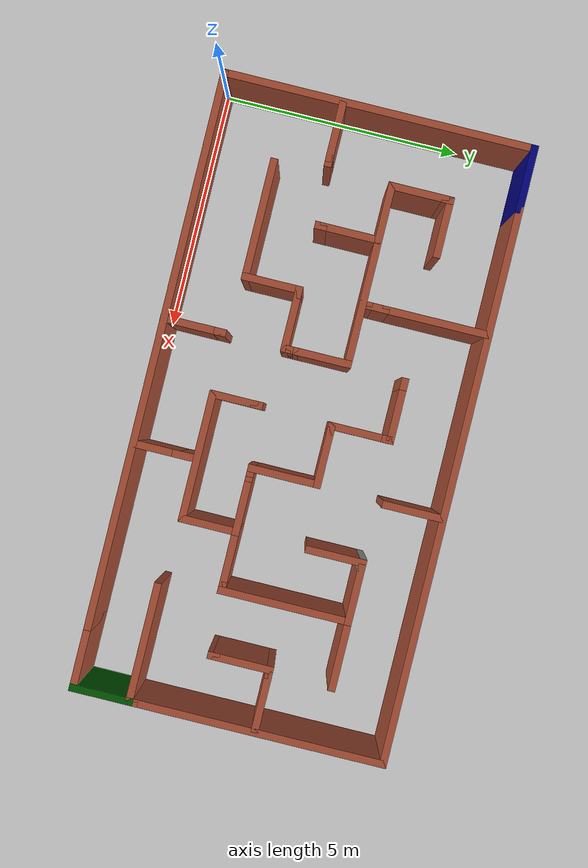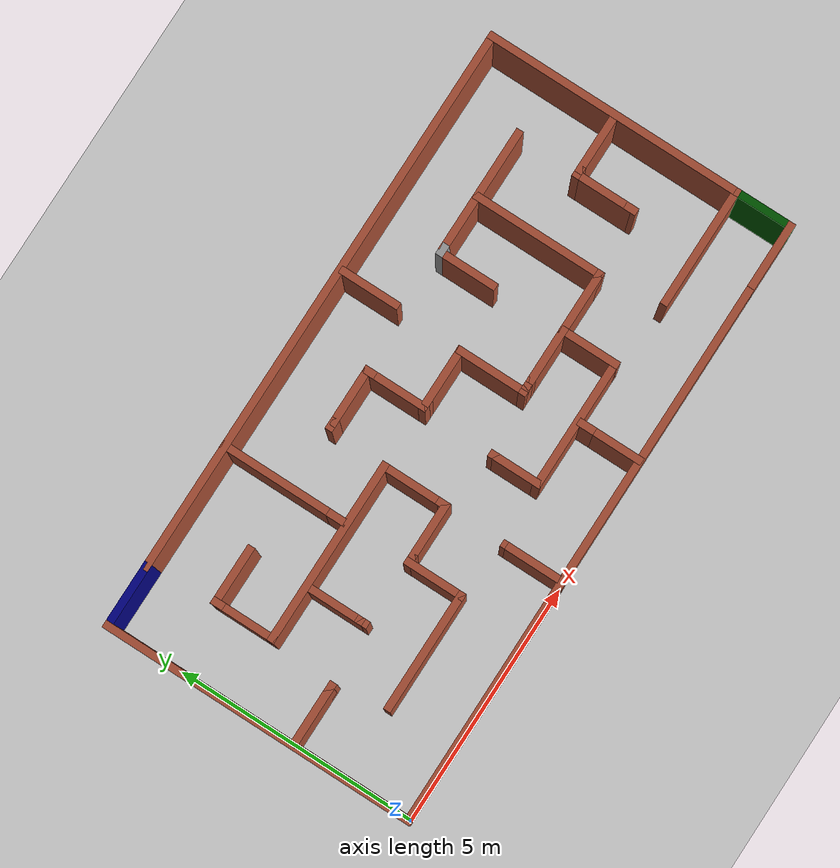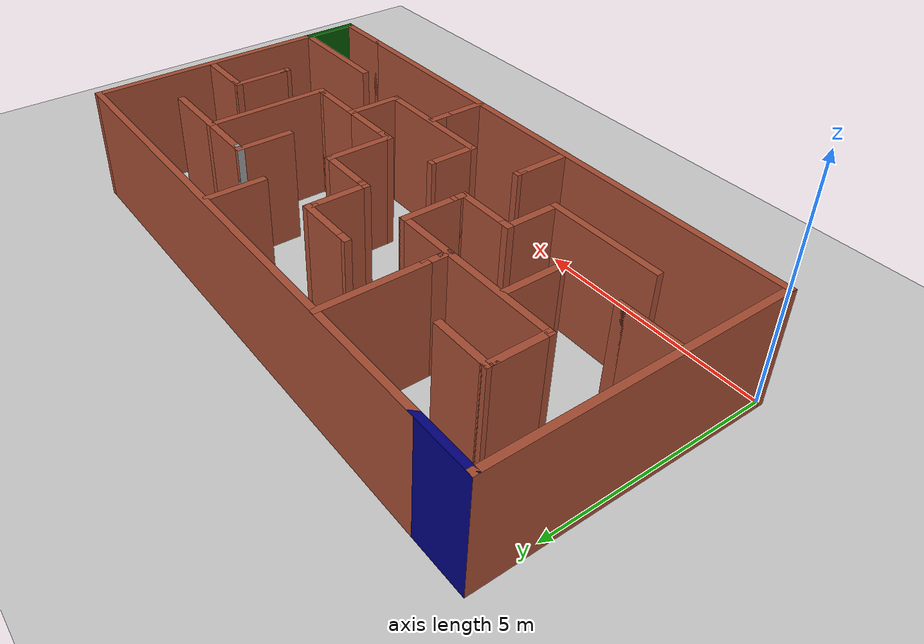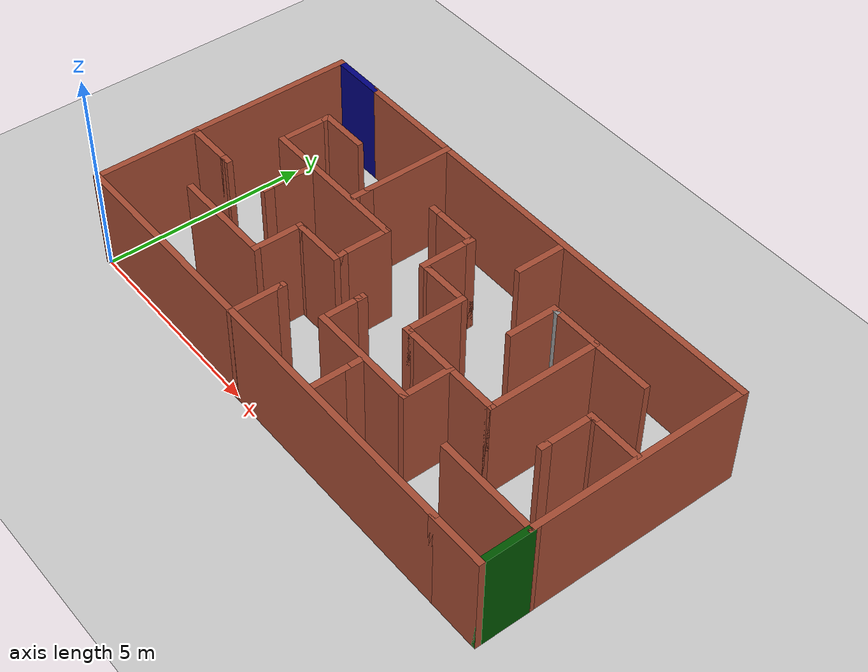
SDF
<sdf version="1.6">
 <world name="default">
  <light name="sun" type="directional">
   <pose>0 0 10 0 -0 0</pose>
   <diffuse>0.8 0.8 0.8 1</diffuse>
   <specular>0.1 0.1 0.1 1</specular>
   <attenuation>
    <range>1000</range>
    <constant>0.9</constant>
    <linear>0.01</linear>
    <quadratic>0.001</quadratic>
   </attenuation>
   <direction>-0.5 0.5 -1</direction>
  </light>
  <model name="ground_plane">
   <static>1</static>
   <link name="link">
    <collision name="collision">
     <geometry><plane><normal>0 0 1</normal><size>100 100</size></plane></geometry>
     <surface><friction><ode><mu>100</mu><mu2>50</mu2></ode></friction></surface>
    </collision>
    <visual name="visual">
     <cast_shadows>0</cast_shadows>
     <geometry><plane><normal>0 0 1</normal><size>100 100</size></plane></geometry>
     <material>
      <script><uri>file://media/materials/scripts/gazebo.material</uri><name>Gazebo/Grey</name></script>
     </material>
    </visual>
   </link>
  </model>
  <gravity>0 0 -9.8</gravity>
  <magnetic_field>6e-06 2.3e-05 -4.2e-05</magnetic_field>
  <atmosphere type="adiabatic"/>
  <physics name="default_physics" default="0" type="ode">
   <max_step_size>0.001</max_step_size>
   <real_time_factor>1</real_time_factor>
   <real_time_update_rate>1000</real_time_update_rate>
  </physics>
  <scene><ambient>0.4 0.4 0.4 1</ambient><background>0.7 0.7 0.7 1</background><shadows>1</shadows></scene>
  <spherical_coordinates>
   <surface_model>EARTH_WGS84</surface_model>
   <latitude_deg>0</latitude_deg>
   <longitude_deg>0</longitude_deg>
   <elevation>0</elevation>
   <heading_deg>0</heading_deg>
  </spherical_coordinates>
  <model name="maze_simple">
   <pose>6.28183 3.20033 0 0 -0 0</pose>
   <link name="Wall_100">
    <collision name="Wall_100_Collision">
     <geometry><box><size>0.25 0.15 2.5</size></box></geometry>
     <pose>0 0 1.25 0 -0 0</pose>
    </collision>
    <visual name="Wall_100_Visual">
     <pose>0 0 1.25 0 -0 0</pose>
     <geometry><box><size>0.25 0.15 2.5</size></box></geometry>
     <material>
      <script><uri>file://media/materials/scripts/gazebo.material</uri><name>Gazebo/Bricks</name></script>
      <ambient>1 1 1 1</ambient>
     </material>
    </visual>
    <pose>-1.13318 1.78039 0 0 -0 3.14159</pose>
   </link>
   <link name="Wall_102">
    <collision name="Wall_102_Collision">
     <geometry><box><size>1.25 0.15 2.5</size></box></geometry>
     <pose>0 0 1.25 0 -0 0</pose>
    </collision>
    <visual name="Wall_102_Visual">
     <pose>0 0 1.25 0 -0 0</pose>
     <geometry><box><size>1.25 0.15 2.5</size></box></geometry>
     <material>
      <script><uri>file://media/materials/scripts/gazebo.material</uri><name>Gazebo/Bricks</name></script>
      <ambient>1 1 1 1</ambient>
     </material>
    </visual>
    <pose>3.06682 -0.769606 0 0 -0 0</pose>
   </link>
   <link name="Wall_103">
    <collision name="Wall_103_Collision">
     <geometry><box><size>0.25 0.15 2.5</size></box></geometry>
     <pose>0 0 1.25 0 -0 0</pose>
    </collision>
    <visual name="Wall_103_Visual">
     <pose>0 0 1.25 0 -0 0</pose>
     <geometry><box><size>0.25 0.15 2.5</size></box></geometry>
     <material>
      <script><uri>file://media/materials/scripts/gazebo.material</uri><name>Gazebo/Bricks</name></script>
      <ambient>1 1 1 1</ambient>
     </material>
    </visual>
    <pose>3.66682 -0.769606 0 0 -0 0</pose>
   </link>
   <link name="Wall_104">
    <collision name="Wall_104_Collision">
     <geometry><box><size>2.75 0.15 2.5</size></box></geometry>
     <pose>0 0 1.25 0 -0 0</pose>
    </collision>
    <visual name="Wall_104_Visual">
     <pose>0 0 1.25 0 -0 0</pose>
     <geometry><box><size>2.75 0.15 2.5</size></box></geometry>
     <material>
      <script><uri>file://media/materials/scripts/gazebo.material</uri><name>Gazebo/Bricks</name></script>
      <ambient>1 1 1 1</ambient>
     </material>
    </visual>
    <pose>3.71682 0.530394 0 0 -0 1.5708</pose>
   </link>
   <link name="Wall_105">
    <collision name="Wall_105_Collision">
     <geometry><box><size>1.25 0.15 2.5</size></box></geometry>
     <pose>0 0 1.25 0 -0 0</pose>
    </collision>
    <visual name="Wall_105_Visual">
     <pose>0 0 1.25 0 -0 0</pose>
     <geometry><box><size>1.25 0.15 2.5</size></box></geometry>
     <material>
      <script><uri>file://media/materials/scripts/gazebo.material</uri><name>Gazebo/Bricks</name></script>
      <ambient>1 1 1 1</ambient>
     </material>
    </visual>
    <pose>3.16682 1.83039 0 0 -0 3.14159</pose>
   </link>
   <link name="Wall_106">
    <collision name="Wall_106_Collision">
     <geometry><box><size>0.25 0.15 2.5</size></box></geometry>
     <pose>0 0 1.25 0 -0 0</pose>
    </collision>
    <visual name="Wall_106_Visual">
     <pose>0 0 1.25 0 -0 0</pose>
     <geometry><box><size>0.25 0.15 2.5</size></box></geometry>
     <material>
      <script><uri>file://media/materials/scripts/gazebo.material</uri><name>Gazebo/Grey</name></script>
      <ambient>1 1 1 1</ambient>
     </material>
    </visual>
    <pose>2.56682 1.83039 0 0 -0 3.14159</pose>
   </link>
   <link name="Wall_107">
    <collision name="Wall_107_Collision">
     <geometry><box><size>1.25 0.15 2.5</size></box></geometry>
     <pose>0 0 1.25 0 -0 0</pose>
    </collision>
    <visual name="Wall_107_Visual">
     <pose>0 0 1.25 0 -0 0</pose>
     <geometry><box><size>1.25 0.15 2.5</size></box></geometry>
     <material>
      <script><uri>file://media/materials/scripts/gazebo.material</uri><name>Gazebo/Bricks</name></script>
      <ambient>1 1 1 1</ambient>
     </material>
    </visual>
    <pose>2.51682 1.28039 0 0 0 -1.5708</pose>
   </link>
   <link name="Wall_109">
    <collision name="Wall_109_Collision">
     <geometry><box><size>1.5 0.15 2.5</size></box></geometry>
     <pose>0 0 1.25 0 -0 0</pose>
    </collision>
    <visual name="Wall_109_Visual">
     <pose>0 0 1.25 0 -0 0</pose>
     <geometry><box><size>1.5 0.15 2.5</size></box></geometry>
     <material>
      <script><uri>file://media/materials/scripts/gazebo.material</uri><name>Gazebo/Bricks</name></script>
      <ambient>1 1 1 1</ambient>
     </material>
    </visual>
    <pose>4.39182 1.83039 0 0 -0 0</pose>
   </link>
   <link name="Wall_111">
    <collision name="Wall_111_Collision">
     <geometry><box><size>1.25 0.15 2.5</size></box></geometry>
     <pose>0 0 1.25 0 -0 0</pose>
    </collision>
    <visual name="Wall_111_Visual">
     <pose>0 0 1.25 0 -0 0</pose>
     <geometry><box><size>1.25 0.15 2.5</size></box></geometry>
     <material>
      <script><uri>file://media/materials/scripts/gazebo.material</uri><name>Gazebo/Bricks</name></script>
      <ambient>1 1 1 1</ambient>
     </material>
    </visual>
    <pose>5.67175 0.542885 0 0 -0 3.14159</pose>
   </link>
   <link name="Wall_112">
    <collision name="Wall_112_Collision">
     <geometry><box><size>0.25 0.15 2.5</size></box></geometry>
     <pose>0 0 1.25 0 -0 0</pose>
    </collision>
    <visual name="Wall_112_Visual">
     <pose>0 0 1.25 0 -0 0</pose>
     <geometry><box><size>0.25 0.15 2.5</size></box></geometry>
     <material>
      <script><uri>file://media/materials/scripts/gazebo.material</uri><name>Gazebo/Bricks</name></script>
      <ambient>1 1 1 1</ambient>
     </material>
    </visual>
    <pose>5.07175 0.542885 0 0 -0 3.14159</pose>
   </link>
   <link name="Wall_113">
    <collision name="Wall_113_Collision">
     <geometry><box><size>1.25 0.15 2.5</size></box></geometry>
     <pose>0 0 1.25 0 -0 0</pose>
    </collision>
    <visual name="Wall_113_Visual">
     <pose>0 0 1.25 0 -0 0</pose>
     <geometry><box><size>1.25 0.15 2.5</size></box></geometry>
     <material>
      <script><uri>file://media/materials/scripts/gazebo.material</uri><name>Gazebo/Bricks</name></script>
      <ambient>1 1 1 1</ambient>
     </material>
    </visual>
    <pose>5.02175 -0.007115 0 0 0 -1.5708</pose>
   </link>
   <link name="Wall_114">
    <collision name="Wall_114_Collision">
     <geometry><box><size>0.25 0.15 2.5</size></box></geometry>
     <pose>0 0 1.25 0 -0 0</pose>
    </collision>
    <visual name="Wall_114_Visual">
     <pose>0 0 1.25 0 -0 0</pose>
     <geometry><box><size>0.25 0.15 2.5</size></box></geometry>
     <material>
      <script><uri>file://media/materials/scripts/gazebo.material</uri><name>Gazebo/Bricks</name></script>
      <ambient>1 1 1 1</ambient>
     </material>
    </visual>
    <pose>5.02175 -0.607115 0 0 0 -1.5708</pose>
   </link>
   <link name="Wall_140">
    <collision name="Wall_140_Collision">
     <geometry><box><size>6.5 0.15 2.5</size></box></geometry>
     <pose>0 0 1.25 0 -0 0</pose>
    </collision>
    <visual name="Wall_140_Visual">
     <pose>0 0 1.25 0 -0 0</pose>
     <geometry><box><size>6.5 0.15 2.5</size></box></geometry>
     <material>
      <script><uri>file://media/materials/scripts/gazebo.material</uri><name>Gazebo/Bricks</name></script>
      <ambient>1 1 1 1</ambient>
     </material>
    </visual>
    <pose>-6.3 0.002046 0 0 -0 1.5708</pose>
   </link>
   <link name="Wall_142">
    <collision name="Wall_142_Collision">
     <geometry><box><size>1.25 0.15 2.5</size></box></geometry>
     <pose>0 0 1.25 0 -0 0</pose>
    </collision>
    <visual name="Wall_142_Visual">
     <pose>0 0 1.25 0 -0 0</pose>
     <geometry><box><size>1.25 0.15 2.5</size></box></geometry>
     <material>
      <script><uri>file://media/materials/scripts/gazebo.material</uri><name>Gazebo/Bricks</name></script>
      <ambient>1 1 1 1</ambient>
     </material>
    </visual>
    <pose>-1.26436 -2.62705 0 0 -0 1.5708</pose>
   </link>
   <link name="Wall_143">
    <collision name="Wall_143_Collision">
     <geometry><box><size>0.25 0.15 2.5</size></box></geometry>
     <pose>0 0 1.25 0 -0 0</pose>
    </collision>
    <visual name="Wall_143_Visual">
     <pose>0 0 1.25 0 -0 0</pose>
     <geometry><box><size>0.25 0.15 2.5</size></box></geometry>
     <material>
      <script><uri>file://media/materials/scripts/gazebo.material</uri><name>Gazebo/Bricks</name></script>
      <ambient>1 1 1 1</ambient>
     </material>
    </visual>
    <pose>-1.26436 -2.02705 0 0 -0 1.5708</pose>
   </link>
   <link name="Wall_145">
    <collision name="Wall_145_Collision">
     <geometry><box><size>1 0.15 2.5</size></box></geometry>
     <pose>0 0 1.25 0 -0 0</pose>
    </collision>
    <visual name="Wall_145_Visual">
     <pose>0 0 1.25 0 -0 0</pose>
     <geometry><box><size>1 0.15 2.5</size></box></geometry>
     <material>
      <script><uri>file://media/materials/scripts/gazebo.material</uri><name>Gazebo/Bricks</name></script>
      <ambient>1 1 1 1</ambient>
     </material>
    </visual>
    <pose>1.29548 -2.72328 0 0 -0 1.5708</pose>
   </link>
   <link name="Wall_147">
    <collision name="Wall_147_Collision">
     <geometry><box><size>0.5 0.15 2.5</size></box></geometry>
     <pose>0 0 1.25 0 -0 0</pose>
    </collision>
    <visual name="Wall_147_Visual">
     <pose>0 0 1.25 0 -0 0</pose>
     <geometry><box><size>0.5 0.15 2.5</size></box></geometry>
     <material>
      <script><uri>file://media/materials/scripts/gazebo.material</uri><name>Gazebo/Bricks</name></script>
      <ambient>1 1 1 1</ambient>
     </material>
    </visual>
    <pose>1.29548 -2.12328 0 0 -0 1.5708</pose>
   </link>
   <link name="Wall_149">
    <collision name="Wall_149_Collision">
     <geometry><box><size>2.7 0.15 2.5</size></box></geometry>
     <pose>0 0 1.25 0 -0 0</pose>
    </collision>
    <visual name="Wall_149_Visual">
     <pose>0 0 1.25 0 -0 0</pose>
     <geometry><box><size>2.7 0.15 2.5</size></box></geometry>
     <material>
      <script><uri>file://media/materials/scripts/gazebo.material</uri><name>Gazebo/Bricks</name></script>
      <ambient>1 1 1 1</ambient>
     </material>
    </visual>
    <pose>1.24182 -1.86961 0 0 -0 0</pose>
   </link>
   <link name="Wall_151">
    <collision name="Wall_151_Collision">
     <geometry><box><size>2.25 0.15 2.5</size></box></geometry>
     <pose>0 0 1.25 0 -0 0</pose>
    </collision>
    <visual name="Wall_151_Visual">
     <pose>0 0 1.25 0 -0 0</pose>
     <geometry><box><size>2.25 0.15 2.5</size></box></geometry>
     <material>
      <script><uri>file://media/materials/scripts/gazebo.material</uri><name>Gazebo/Bricks</name></script>
      <ambient>1 1 1 1</ambient>
     </material>
    </visual>
    <pose>-2.48197 2.11983 0 0 0 -1.5708</pose>
   </link>
   <link name="Wall_153">
    <collision name="Wall_153_Collision">
     <geometry><box><size>0.5 0.15 2.5</size></box></geometry>
     <pose>0 0 1.25 0 -0 0</pose>
    </collision>
    <visual name="Wall_153_Visual">
     <pose>0 0 1.25 0 -0 0</pose>
     <geometry><box><size>0.5 0.15 2.5</size></box></geometry>
     <material>
      <script><uri>file://media/materials/scripts/gazebo.material</uri><name>Gazebo/Bricks</name></script>
      <ambient>1 1 1 1</ambient>
     </material>
    </visual>
    <pose>-2.48197 0.894825 0 0 0 -1.5708</pose>
   </link>
   <link name="Wall_154">
    <collision name="Wall_154_Collision">
     <geometry><box><size>0.25 0.15 2.5</size></box></geometry>
     <pose>0 0 1.25 0 -0 0</pose>
    </collision>
    <visual name="Wall_154_Visual">
     <pose>0 0 1.25 0 -0 0</pose>
     <geometry><box><size>0.25 0.15 2.5</size></box></geometry>
     <material>
      <script><uri>file://media/materials/scripts/gazebo.material</uri><name>Gazebo/Bricks</name></script>
      <ambient>1 1 1 1</ambient>
     </material>
    </visual>
    <pose>-2.48197 0.669825 0 0 0 -1.5708</pose>
   </link>
   <link name="Wall_156">
    <collision name="Wall_156_Collision">
     <geometry><box><size>3.8 0.15 2.5</size></box></geometry>
     <pose>0 0 1.25 0 -0 0</pose>
    </collision>
    <visual name="Wall_156_Visual">
     <pose>0 0 1.25 0 -0 0</pose>
     <geometry><box><size>3.8 0.15 2.5</size></box></geometry>
     <material>
      <script><uri>file://media/materials/scripts/gazebo.material</uri><name>Gazebo/Bricks</name></script>
      <ambient>1 1 1 1</ambient>
     </material>
    </visual>
    <pose>-3.07995 0.598486 0 0 -0 0</pose>
   </link>
   <link name="Wall_160">
    <collision name="Wall_160_Collision">
     <geometry><box><size>1.25 0.15 2.5</size></box></geometry>
     <pose>0 0 1.25 0 -0 0</pose>
    </collision>
    <visual name="Wall_160_Visual">
     <pose>0 0 1.25 0 -0 0</pose>
     <geometry><box><size>1.25 0.15 2.5</size></box></geometry>
     <material>
      <script><uri>file://media/materials/scripts/gazebo.material</uri><name>Gazebo/Bricks</name></script>
      <ambient>1 1 1 1</ambient>
     </material>
    </visual>
    <pose>1.28589 2.55271 0 0 0 -1.5708</pose>
   </link>
   <link name="Wall_162">
    <collision name="Wall_162_Collision">
     <geometry><box><size>11.5 0.15 2.5</size></box></geometry>
     <pose>0 0 1.25 0 -0 0</pose>
    </collision>
    <visual name="Wall_162_Visual">
     <pose>0 0 1.25 0 -0 0</pose>
     <geometry><box><size>11.5 0.15 2.5</size></box></geometry>
     <material>
      <script><uri>file://media/materials/scripts/gazebo.material</uri><name>Gazebo/Bricks</name></script>
      <ambient>1 1 1 1</ambient>
     </material>
    </visual>
    <pose>0.625 3.17705 0 0 -0 3.14159</pose>
   </link>
   <link name="Wall_163">
    <collision name="Wall_163_Collision">
     <geometry><box><size>1.4 0.15 2.5</size></box></geometry>
     <pose>0 0 1.25 0 -0 0</pose>
    </collision>
    <visual name="Wall_163_Visual">
     <pose>0 0 1.25 0 -0 0</pose>
     <geometry><box><size>1.4 0.15 2.5</size></box></geometry>
     <material>
      <script><uri>file://media/materials/scripts/gazebo.material</uri><name>Gazebo/Grey</name></script>
      <ambient>0 0 0.498039 1</ambient>
     </material>
    </visual>
    <pose>-5.675 3.17705 0 0 -0 3.14159</pose>
   </link>
   <link name="Wall_165">
    <collision name="Wall_165_Collision">
     <geometry><box><size>11.5 0.15 2.5</size></box></geometry>
     <pose>0 0 1.25 0 -0 0</pose>
    </collision>
    <visual name="Wall_165_Visual">
     <pose>0 0 1.25 0 -0 0</pose>
     <geometry><box><size>11.5 0.15 2.5</size></box></geometry>
     <material>
      <script><uri>file://media/materials/scripts/gazebo.material</uri><name>Gazebo/Bricks</name></script>
      <ambient>1 1 1 1</ambient>
     </material>
    </visual>
    <pose>-0.625 -3.17295 0 0 -0 0</pose>
   </link>
   <link name="Wall_166">
    <collision name="Wall_166_Collision">
     <geometry><box><size>1.4 0.15 2.5</size></box></geometry>
     <pose>0 0 1.25 0 -0 0</pose>
    </collision>
    <visual name="Wall_166_Visual">
     <pose>0 0 1.25 0 -0 0</pose>
     <geometry><box><size>1.4 0.15 2.5</size></box></geometry>
     <material>
      <script><uri>file://media/materials/scripts/gazebo.material</uri><name>Gazebo/Bricks</name></script>
      <ambient>1 1 1 1</ambient>
     </material>
    </visual>
    <pose>5.675 -3.17295 0 0 -0 0</pose>
   </link>
   <link name="Wall_172">
    <collision name="Wall_172_Collision">
     <geometry><box><size>5.25 0.15 2.5</size></box></geometry>
     <pose>0 0 1.25 0 -0 0</pose>
    </collision>
    <visual name="Wall_172_Visual">
     <pose>0 0 1.25 0 -0 0</pose>
     <geometry><box><size>5.25 0.15 2.5</size></box></geometry>
     <material>
      <script><uri>file://media/materials/scripts/gazebo.material</uri><name>Gazebo/Bricks</name></script>
      <ambient>1 1 1 1</ambient>
     </material>
    </visual>
    <pose>6.3 0.627046 0 0 0 -1.5708</pose>
   </link>
   <link name="Wall_173">
    <collision name="Wall_173_Collision">
     <geometry><box><size>0.25 0.15 2.5</size></box></geometry>
     <pose>0 0 1.25 0 -0 0</pose>
    </collision>
    <visual name="Wall_173_Visual">
     <pose>0 0 1.25 0 -0 0</pose>
     <geometry><box><size>0.25 0.15 2.5</size></box></geometry>
     <material>
      <script><uri>file://media/materials/scripts/gazebo.material</uri><name>Gazebo/Bricks</name></script>
      <ambient>1 1 1 1</ambient>
     </material>
    </visual>
    <pose>6.3 -1.97295 0 0 0 -1.5708</pose>
   </link>
   <link name="Wall_174">
    <collision name="Wall_174_Collision">
     <geometry><box><size>1.3 0.15 2.5</size></box></geometry>
     <pose>0 0 1.25 0 -0 0</pose>
    </collision>
    <visual name="Wall_174_Visual">
     <pose>0 0 1.25 0 -0 0</pose>
     <geometry><box><size>1.3 0.15 2.5</size></box></geometry>
     <material>
      <script><uri>file://media/materials/scripts/gazebo.material</uri><name>Gazebo/Grey</name></script>
      <ambient>0 0.333333 0 1</ambient>
     </material>
    </visual>
    <pose>6.3 -2.59795 0 0 0 -1.5708</pose>
   </link>
   <link name="Wall_176">
    <collision name="Wall_176_Collision">
     <geometry><box><size>2.5 0.15 2.5</size></box></geometry>
     <pose>0 0 1.25 0 -0 0</pose>
    </collision>
    <visual name="Wall_176_Visual">
     <pose>0 0 1.25 0 -0 0</pose>
     <geometry><box><size>2.5 0.15 2.5</size></box></geometry>
     <material>
      <script><uri>file://media/materials/scripts/gazebo.material</uri><name>Gazebo/Bricks</name></script>
      <ambient>1 1 1 1</ambient>
     </material>
    </visual>
    <pose>5.125 -2.02295 0 0 -0 3.14159</pose>
   </link>
   <link name="Wall_52">
    <collision name="Wall_52_Collision">
     <geometry><box><size>1.25 0.15 2.5</size></box></geometry>
     <pose>0 0 1.25 0 -0 0</pose>
    </collision>
    <visual name="Wall_52_Visual">
     <pose>0 0 1.25 0 -0 0</pose>
     <geometry><box><size>1.25 0.15 2.5</size></box></geometry>
     <material>
      <script><uri>file://media/materials/scripts/gazebo.material</uri><name>Gazebo/Bricks</name></script>
      <ambient>1 1 1 1</ambient>
     </material>
    </visual>
    <pose>-5.69193 -0.74058 0 0 -0 0</pose>
   </link>
   <link name="Wall_53">
    <collision name="Wall_53_Collision">
     <geometry><box><size>0.25 0.15 2.5</size></box></geometry>
     <pose>0 0 1.25 0 -0 0</pose>
    </collision>
    <visual name="Wall_53_Visual">
     <pose>0 0 1.25 0 -0 0</pose>
     <geometry><box><size>0.25 0.15 2.5</size></box></geometry>
     <material>
      <script><uri>file://media/materials/scripts/gazebo.material</uri><name>Gazebo/Bricks</name></script>
      <ambient>1 1 1 1</ambient>
     </material>
    </visual>
    <pose>-5.09193 -0.74058 0 0 -0 0</pose>
   </link>
   <link name="Wall_61">
    <collision name="Wall_61_Collision">
     <geometry><box><size>1.25 0.15 2.5</size></box></geometry>
     <pose>0 0 1.25 0 -0 0</pose>
    </collision>
    <visual name="Wall_61_Visual">
     <pose>0 0 1.25 0 -0 0</pose>
     <geometry><box><size>1.25 0.15 2.5</size></box></geometry>
     <material>
      <script><uri>file://media/materials/scripts/gazebo.material</uri><name>Gazebo/Bricks</name></script>
      <ambient>1 1 1 1</ambient>
     </material>
    </visual>
    <pose>-4.90495 1.14849 0 0 -0 1.5708</pose>
   </link>
   <link name="Wall_62">
    <collision name="Wall_62_Collision">
     <geometry><box><size>0.25 0.15 2.5</size></box></geometry>
     <pose>0 0 1.25 0 -0 0</pose>
    </collision>
    <visual name="Wall_62_Visual">
     <pose>0 0 1.25 0 -0 0</pose>
     <geometry><box><size>0.25 0.15 2.5</size></box></geometry>
     <material>
      <script><uri>file://media/materials/scripts/gazebo.material</uri><name>Gazebo/Bricks</name></script>
      <ambient>1 1 1 1</ambient>
     </material>
    </visual>
    <pose>-4.90495 1.74849 0 0 -0 1.5708</pose>
   </link>
   <link name="Wall_63">
    <collision name="Wall_63_Collision">
     <geometry><box><size>1.25 0.15 2.5</size></box></geometry>
     <pose>0 0 1.25 0 -0 0</pose>
    </collision>
    <visual name="Wall_63_Visual">
     <pose>0 0 1.25 0 -0 0</pose>
     <geometry><box><size>1.25 0.15 2.5</size></box></geometry>
     <material>
      <script><uri>file://media/materials/scripts/gazebo.material</uri><name>Gazebo/Bricks</name></script>
      <ambient>1 1 1 1</ambient>
     </material>
    </visual>
    <pose>-4.35495 1.79849 0 0 -0 0</pose>
   </link>
   <link name="Wall_65">
    <collision name="Wall_65_Collision">
     <geometry><box><size>1.25 0.15 2.5</size></box></geometry>
     <pose>0 0 1.25 0 -0 0</pose>
    </collision>
    <visual name="Wall_65_Visual">
     <pose>0 0 1.25 0 -0 0</pose>
     <geometry><box><size>1.25 0.15 2.5</size></box></geometry>
     <material>
      <script><uri>file://media/materials/scripts/gazebo.material</uri><name>Gazebo/Bricks</name></script>
      <ambient>1 1 1 1</ambient>
     </material>
    </visual>
    <pose>-3.79332 0.017373 0 0 0 -1.5708</pose>
   </link>
   <link name="Wall_66">
    <collision name="Wall_66_Collision">
     <geometry><box><size>0.25 0.15 2.5</size></box></geometry>
     <pose>0 0 1.25 0 -0 0</pose>
    </collision>
    <visual name="Wall_66_Visual">
     <pose>0 0 1.25 0 -0 0</pose>
     <geometry><box><size>0.25 0.15 2.5</size></box></geometry>
     <material>
      <script><uri>file://media/materials/scripts/gazebo.material</uri><name>Gazebo/Bricks</name></script>
      <ambient>1 1 1 1</ambient>
     </material>
    </visual>
    <pose>-3.79332 -0.582627 0 0 0 -1.5708</pose>
   </link>
   <link name="Wall_70">
    <collision name="Wall_70_Collision">
     <geometry><box><size>1.25 0.15 2.5</size></box></geometry>
     <pose>0 0 1.25 0 -0 0</pose>
    </collision>
    <visual name="Wall_70_Visual">
     <pose>0 0 1.25 0 -0 0</pose>
     <geometry><box><size>1.25 0.15 2.5</size></box></geometry>
     <material>
      <script><uri>file://media/materials/scripts/gazebo.material</uri><name>Gazebo/Bricks</name></script>
      <ambient>1 1 1 1</ambient>
     </material>
    </visual>
    <pose>-1.25495 0.048486 0 0 0 -1.5708</pose>
   </link>
   <link name="Wall_71">
    <collision name="Wall_71_Collision">
     <geometry><box><size>0.25 0.15 2.5</size></box></geometry>
     <pose>0 0 1.25 0 -0 0</pose>
    </collision>
    <visual name="Wall_71_Visual">
     <pose>0 0 1.25 0 -0 0</pose>
     <geometry><box><size>0.25 0.15 2.5</size></box></geometry>
     <material>
      <script><uri>file://media/materials/scripts/gazebo.material</uri><name>Gazebo/Bricks</name></script>
      <ambient>1 1 1 1</ambient>
     </material>
    </visual>
    <pose>-1.25495 -0.551513 0 0 0 -1.5708</pose>
   </link>
   <link name="Wall_72">
    <collision name="Wall_72_Collision">
     <geometry><box><size>0.25 0.15 2.5</size></box></geometry>
     <pose>0 0 1.25 0 -0 0</pose>
    </collision>
    <visual name="Wall_72_Visual">
     <pose>0 0 1.25 0 -0 0</pose>
     <geometry><box><size>0.25 0.15 2.5</size></box></geometry>
     <material>
      <script><uri>file://media/materials/scripts/gazebo.material</uri><name>Gazebo/Bricks</name></script>
      <ambient>1 1 1 1</ambient>
     </material>
    </visual>
    <pose>-1.25495 -0.651514 0 0 0 -1.5708</pose>
   </link>
   <link name="Wall_73">
    <collision name="Wall_73_Collision">
     <geometry><box><size>1.25 0.15 2.5</size></box></geometry>
     <pose>0 0 1.25 0 -0 0</pose>
    </collision>
    <visual name="Wall_73_Visual">
     <pose>0 0 1.25 0 -0 0</pose>
     <geometry><box><size>1.25 0.15 2.5</size></box></geometry>
     <material>
      <script><uri>file://media/materials/scripts/gazebo.material</uri><name>Gazebo/Bricks</name></script>
      <ambient>1 1 1 1</ambient>
     </material>
    </visual>
    <pose>-1.80495 -0.701514 0 0 -0 3.14159</pose>
   </link>
   <link name="Wall_74">
    <collision name="Wall_74_Collision">
     <geometry><box><size>0.25 0.15 2.5</size></box></geometry>
     <pose>0 0 1.25 0 -0 0</pose>
    </collision>
    <visual name="Wall_74_Visual">
     <pose>0 0 1.25 0 -0 0</pose>
     <geometry><box><size>0.25 0.15 2.5</size></box></geometry>
     <material>
      <script><uri>file://media/materials/scripts/gazebo.material</uri><name>Gazebo/Bricks</name></script>
      <ambient>1 1 1 1</ambient>
     </material>
    </visual>
    <pose>-2.40495 -0.701514 0 0 -0 3.14159</pose>
   </link>
   <link name="Wall_75">
    <collision name="Wall_75_Collision">
     <geometry><box><size>1.25 0.15 2.5</size></box></geometry>
     <pose>0 0 1.25 0 -0 0</pose>
    </collision>
    <visual name="Wall_75_Visual">
     <pose>0 0 1.25 0 -0 0</pose>
     <geometry><box><size>1.25 0.15 2.5</size></box></geometry>
     <material>
      <script><uri>file://media/materials/scripts/gazebo.material</uri><name>Gazebo/Bricks</name></script>
      <ambient>1 1 1 1</ambient>
     </material>
    </visual>
    <pose>-2.45495 -1.25151 0 0 0 -1.5708</pose>
   </link>
   <link name="Wall_76">
    <collision name="Wall_76_Collision">
     <geometry><box><size>2.5 0.15 2.5</size></box></geometry>
     <pose>0 0 1.25 0 -0 0</pose>
    </collision>
    <visual name="Wall_76_Visual">
     <pose>0 0 1.25 0 -0 0</pose>
     <geometry><box><size>2.5 0.15 2.5</size></box></geometry>
     <material>
      <script><uri>file://media/materials/scripts/gazebo.material</uri><name>Gazebo/Bricks</name></script>
      <ambient>1 1 1 1</ambient>
     </material>
    </visual>
    <pose>-3.62995 -1.80151 0 0 -0 3.14159</pose>
   </link>
   <link name="Wall_85">
    <collision name="Wall_85_Collision">
     <geometry><box><size>1 0.15 2.5</size></box></geometry>
     <pose>0 0 1.25 0 -0 0</pose>
    </collision>
    <visual name="Wall_85_Visual">
     <pose>0 0 1.25 0 -0 0</pose>
     <geometry><box><size>1 0.15 2.5</size></box></geometry>
     <material>
      <script><uri>file://media/materials/scripts/gazebo.material</uri><name>Gazebo/Bricks</name></script>
      <ambient>1 1 1 1</ambient>
     </material>
    </visual>
    <pose>-0.033178 -1.44461 0 0 -0 1.5708</pose>
   </link>
   <link name="Wall_86">
    <collision name="Wall_86_Collision">
     <geometry><box><size>0.25 0.15 2.5</size></box></geometry>
     <pose>0 0 1.25 0 -0 0</pose>
    </collision>
    <visual name="Wall_86_Visual">
     <pose>0 0 1.25 0 -0 0</pose>
     <geometry><box><size>0.25 0.15 2.5</size></box></geometry>
     <material>
      <script><uri>file://media/materials/scripts/gazebo.material</uri><name>Gazebo/Bricks</name></script>
      <ambient>1 1 1 1</ambient>
     </material>
    </visual>
    <pose>-0.033178 -0.969606 0 0 -0 1.5708</pose>
   </link>
   <link name="Wall_90">
    <collision name="Wall_90_Collision">
     <geometry><box><size>1.25 0.15 2.5</size></box></geometry>
     <pose>0 0 1.25 0 -0 0</pose>
    </collision>
    <visual name="Wall_90_Visual">
     <pose>0 0 1.25 0 -0 0</pose>
     <geometry><box><size>1.25 0.15 2.5</size></box></geometry>
     <material>
      <script><uri>file://media/materials/scripts/gazebo.material</uri><name>Gazebo/Bricks</name></script>
      <ambient>1 1 1 1</ambient>
     </material>
    </visual>
    <pose>2.51682 -1.31961 0 0 -0 1.5708</pose>
   </link>
   <link name="Wall_91">
    <collision name="Wall_91_Collision">
     <geometry><box><size>1.25 0.15 2.5</size></box></geometry>
     <pose>0 0 1.25 0 -0 0</pose>
    </collision>
    <visual name="Wall_91_Visual">
     <pose>0 0 1.25 0 -0 0</pose>
     <geometry><box><size>1.25 0.15 2.5</size></box></geometry>
     <material>
      <script><uri>file://media/materials/scripts/gazebo.material</uri><name>Gazebo/Bricks</name></script>
      <ambient>1 1 1 1</ambient>
     </material>
    </visual>
    <pose>1.96682 -0.769606 0 0 -0 3.14159</pose>
   </link>
   <link name="Wall_92">
    <collision name="Wall_92_Collision">
     <geometry><box><size>0.25 0.15 2.5</size></box></geometry>
     <pose>0 0 1.25 0 -0 0</pose>
    </collision>
    <visual name="Wall_92_Visual">
     <pose>0 0 1.25 0 -0 0</pose>
     <geometry><box><size>0.25 0.15 2.5</size></box></geometry>
     <material>
      <script><uri>file://media/materials/scripts/gazebo.material</uri><name>Gazebo/Bricks</name></script>
      <ambient>1 1 1 1</ambient>
     </material>
    </visual>
    <pose>1.36682 -0.769606 0 0 -0 3.14159</pose>
   </link>
   <link name="Wall_93">
    <collision name="Wall_93_Collision">
     <geometry><box><size>0.25 0.15 2.5</size></box></geometry>
     <pose>0 0 1.25 0 -0 0</pose>
    </collision>
    <visual name="Wall_93_Visual">
     <pose>0 0 1.25 0 -0 0</pose>
     <geometry><box><size>0.25 0.15 2.5</size></box></geometry>
     <material>
      <script><uri>file://media/materials/scripts/gazebo.material</uri><name>Gazebo/Bricks</name></script>
      <ambient>1 1 1 1</ambient>
     </material>
    </visual>
    <pose>1.26682 -0.769606 0 0 -0 3.14159</pose>
   </link>
   <link name="Wall_94">
    <collision name="Wall_94_Collision">
     <geometry><box><size>1.5 0.15 2.5</size></box></geometry>
     <pose>0 0 1.25 0 -0 0</pose>
    </collision>
    <visual name="Wall_94_Visual">
     <pose>0 0 1.25 0 -0 0</pose>
     <geometry><box><size>1.5 0.15 2.5</size></box></geometry>
     <material>
      <script><uri>file://media/materials/scripts/gazebo.material</uri><name>Gazebo/Bricks</name></script>
      <ambient>1 1 1 1</ambient>
     </material>
    </visual>
    <pose>1.21682 -0.094606 0 0 -0 1.5708</pose>
   </link>
   <link name="Wall_95">
    <collision name="Wall_95_Collision">
     <geometry><box><size>1.25 0.15 2.5</size></box></geometry>
     <pose>0 0 1.25 0 -0 0</pose>
    </collision>
    <visual name="Wall_95_Visual">
     <pose>0 0 1.25 0 -0 0</pose>
     <geometry><box><size>1.25 0.15 2.5</size></box></geometry>
     <material>
      <script><uri>file://media/materials/scripts/gazebo.material</uri><name>Gazebo/Bricks</name></script>
      <ambient>1 1 1 1</ambient>
     </material>
    </visual>
    <pose>0.666822 0.580394 0 0 -0 3.14159</pose>
   </link>
   <link name="Wall_96">
    <collision name="Wall_96_Collision">
     <geometry><box><size>0.25 0.15 2.5</size></box></geometry>
     <pose>0 0 1.25 0 -0 0</pose>
    </collision>
    <visual name="Wall_96_Visual">
     <pose>0 0 1.25 0 -0 0</pose>
     <geometry><box><size>0.25 0.15 2.5</size></box></geometry>
     <material>
      <script><uri>file://media/materials/scripts/gazebo.material</uri><name>Gazebo/Bricks</name></script>
      <ambient>1 1 1 1</ambient>
     </material>
    </visual>
    <pose>0.066822 0.580394 0 0 -0 3.14159</pose>
   </link>
   <link name="Wall_97">
    <collision name="Wall_97_Collision">
     <geometry><box><size>1.25 0.15 2.5</size></box></geometry>
     <pose>0 0 1.25 0 -0 0</pose>
    </collision>
    <visual name="Wall_97_Visual">
     <pose>0 0 1.25 0 -0 0</pose>
     <geometry><box><size>1.25 0.15 2.5</size></box></geometry>
     <material>
      <script><uri>file://media/materials/scripts/gazebo.material</uri><name>Gazebo/Bricks</name></script>
      <ambient>1 1 1 1</ambient>
     </material>
    </visual>
    <pose>0.016822 1.13039 0 0 -0 1.5708</pose>
   </link>
   <link name="Wall_98">
    <collision name="Wall_98_Collision">
     <geometry><box><size>0.25 0.15 2.5</size></box></geometry>
     <pose>0 0 1.25 0 -0 0</pose>
    </collision>
    <visual name="Wall_98_Visual">
     <pose>0 0 1.25 0 -0 0</pose>
     <geometry><box><size>0.25 0.15 2.5</size></box></geometry>
     <material>
      <script><uri>file://media/materials/scripts/gazebo.material</uri><name>Gazebo/Bricks</name></script>
      <ambient>1 1 1 1</ambient>
     </material>
    </visual>
    <pose>0.016822 1.73039 0 0 -0 1.5708</pose>
   </link>
   <link name="Wall_99">
    <collision name="Wall_99_Collision">
     <geometry><box><size>1.25 0.15 2.5</size></box></geometry>
     <pose>0 0 1.25 0 -0 0</pose>
    </collision>
    <visual name="Wall_99_Visual">
     <pose>0 0 1.25 0 -0 0</pose>
     <geometry><box><size>1.25 0.15 2.5</size></box></geometry>
     <material>
      <script><uri>file://media/materials/scripts/gazebo.material</uri><name>Gazebo/Bricks</name></script>
      <ambient>1 1 1 1</ambient>
     </material>
    </visual>
    <pose>-0.533178 1.78039 0 0 -0 3.14159</pose>
   </link>
   <static>1</static>
  </model>
 </world>
</sdf>
